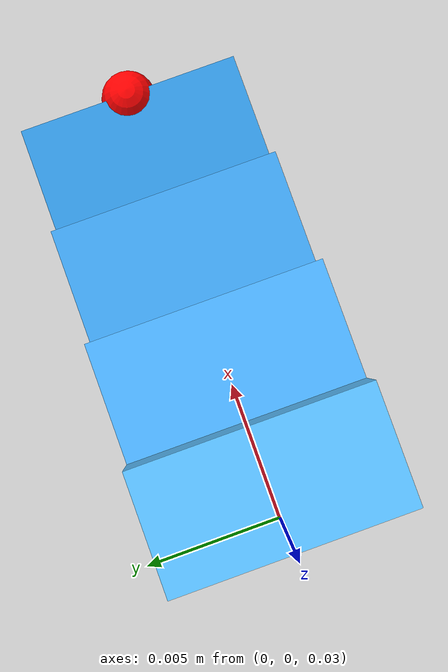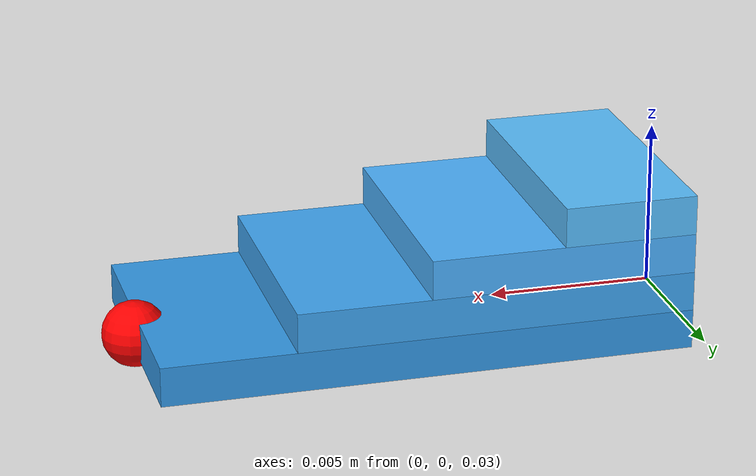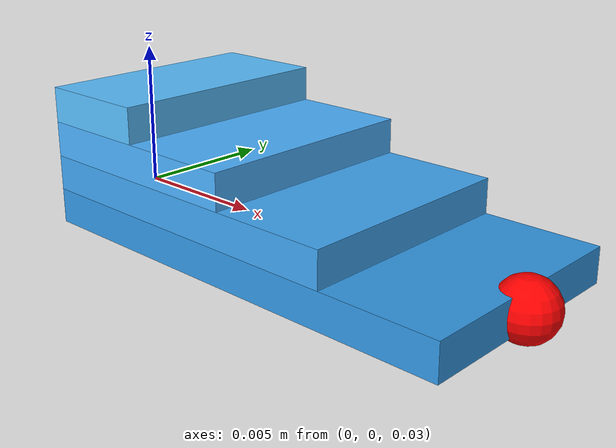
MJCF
<mujoco model="quarter_elliptic_laminated_clean">
  <option timestep="0.001" gravity="0 0 -9.81" integrator="implicitfast"/>
  <compiler angle="radian" autolimits="true"/>

  <default>
  <geom friction="1 0.01 0.001" solref="0.01 1" solimp="0.95 0.99 0.001"/>
  <joint damping="0.01" limited="true" range="-1.2 1.2"/>
</default>

  <worldbody>
    <geom name="ground" type="plane" size="2 2 0.1" rgba="0.95 0.95 0.95 1"/>

    <body name="base" pos="0 0 0.03">

      <!-- LEAF 1 (longest) -->
      <body name="leaf1" pos="0 0 0.000">
        <joint name="leaf1_hinge" type="hinge" axis="0 1 0" stiffness="0.002"/>

        <!-- longest plate spans x = [0, 0.016] -->
        <geom name="leaf1_geom" type="box"
              pos="0.008 0 0"
              size="0.008 0.004 0.0006"
              rgba="0.2 0.6 0.9 1"/>

        <!-- TIP BODY at leaf1 free end: this is where we apply the point load -->
        <body name="tip" pos="0.016 0 0">
          <!-- no joint: rigidly attached to leaf1 -->
          <geom name="tip_geom" type="sphere" size="0.0008" rgba="1 0 0 0.8"
                contype="0" conaffinity="0"/>
          <site name="tip_site" pos="0 0 0" size="0.001" rgba="1 0 0 1"/>
        </body>
      </body>

      <!-- LEAF 2 -->
      <body name="leaf2" pos="0 0 0.0012">
        <joint name="leaf2_hinge" type="hinge" axis="0 1 0" stiffness="0.002"/>

        <geom name="leaf2_geom" type="box"
              pos="0.006 0 0"
              size="0.006 0.004 0.0006"
              rgba="0.25 0.65 0.95 1"/>
      </body>

      <!-- LEAF 3 -->
      <body name="leaf3" pos="0 0 0.0024">
        <joint name="leaf3_hinge" type="hinge" axis="0 1 0" stiffness="0.002"/>

        <geom name="leaf3_geom" type="box"
              pos="0.004 0 0"
              size="0.004 0.004 0.0006"
              rgba="0.3 0.7 1 1"/>
      </body>

      <!-- LEAF 4 -->
      <body name="leaf4" pos="0 0 0.0036">
        <joint name="leaf4_hinge" type="hinge" axis="0 1 0" stiffness="0.002"/>

        <geom name="leaf4_geom" type="box"
              pos="0.002 0 0"
              size="0.002 0.004 0.0006"
              rgba="0.35 0.75 1 1"/>
      </body>

    </body>
  </worldbody>
</mujoco>
